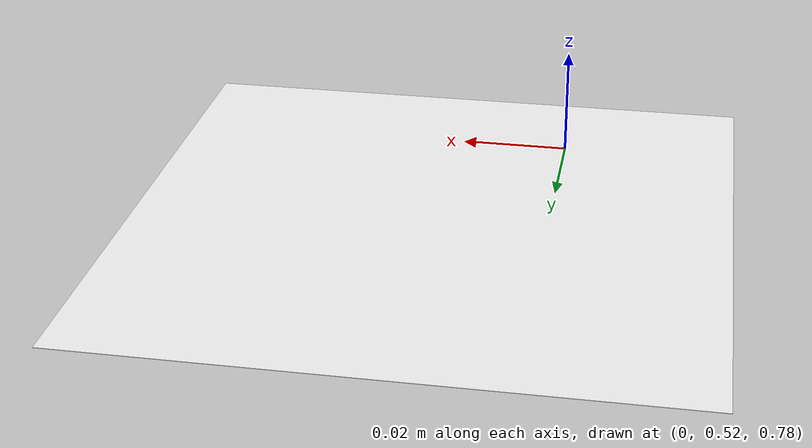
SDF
<?xml version="1.0"?>
<!-- AprilTag 36h11 ID 13 — Modelo para Gazebo Sim -->
<sdf version="1.9">
  <model name="apriltag_13">
    <!-- AprilTag 36h11 ID 13 — Posición calibrada: x=0.018, y=0.572, z=0.282 m -->
    <pose>0.018 0.572 0.79 0 0 0</pose>
    <static>true</static>
    <link name="tag_link">
      <visual name="tag_visual">
        <geometry>
          <plane>
            <normal>0 0 1</normal>
            <size>0.10 0.10</size>
          </plane>
        </geometry>
        <material>
          <diffuse>1 1 1 1</diffuse>
          <specular>0 0 0 1</specular>
          <pbr>
            <metal>
              <albedo_map>model://apriltags/textures/tag36_11_00013.png</albedo_map>
              <metalness>0.0</metalness>
              <roughness>1.0</roughness>
            </metal>
          </pbr>
        </material>
      </visual>
    </link>
  </model>
</sdf>
